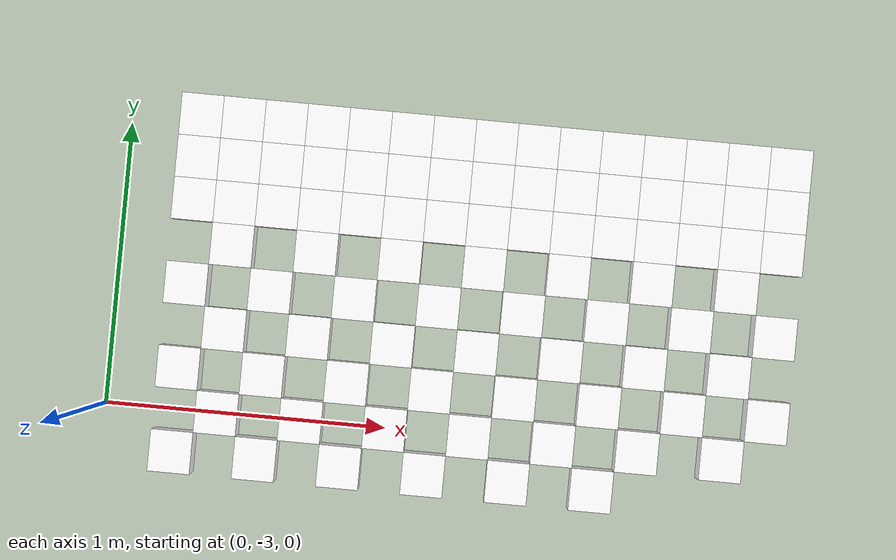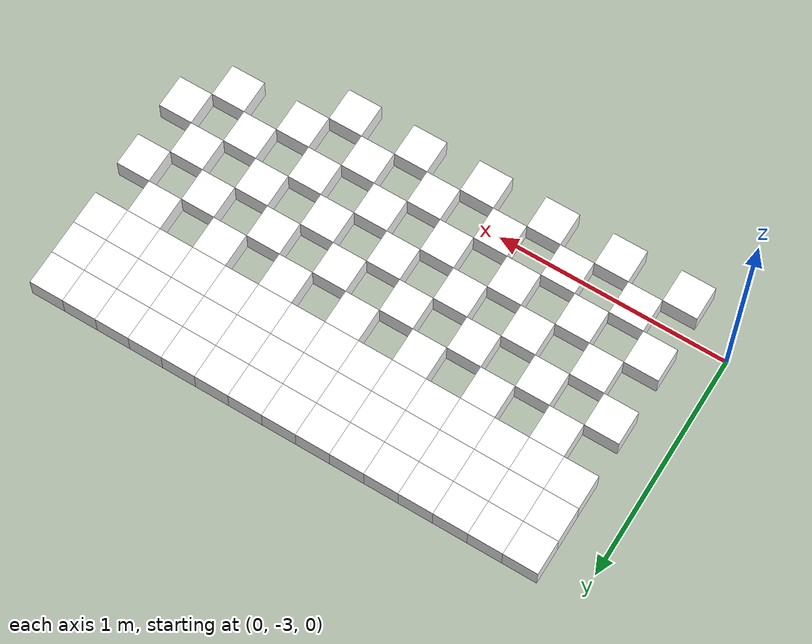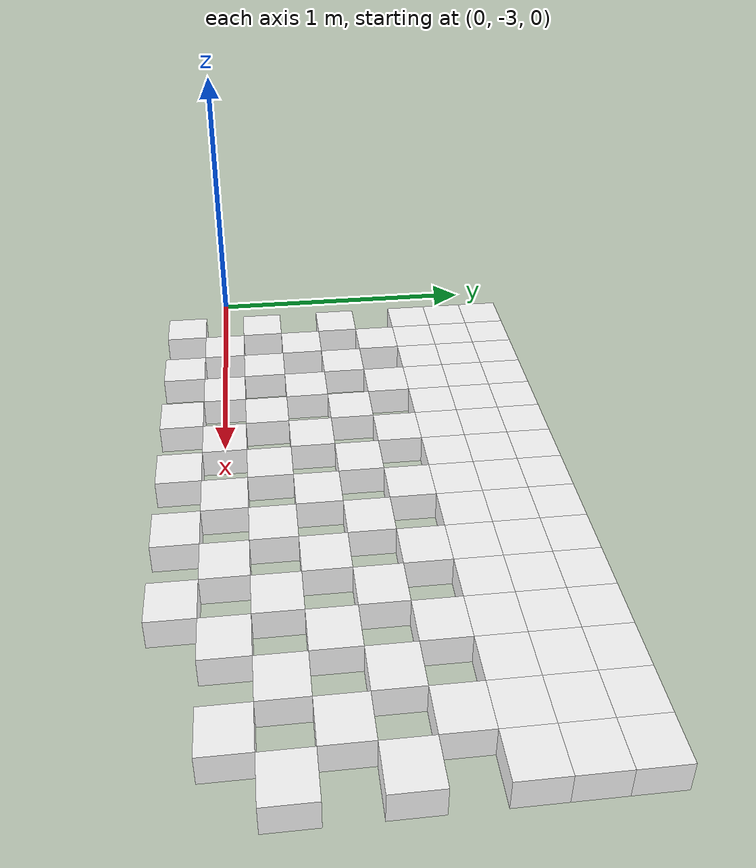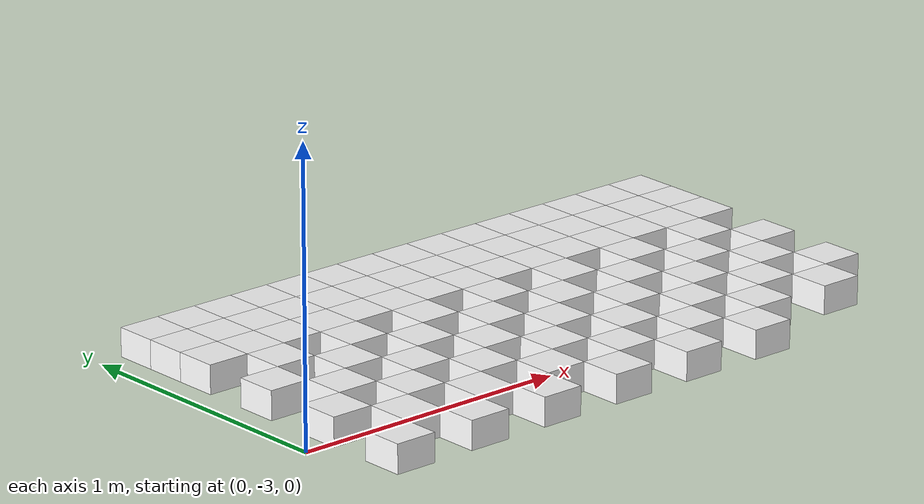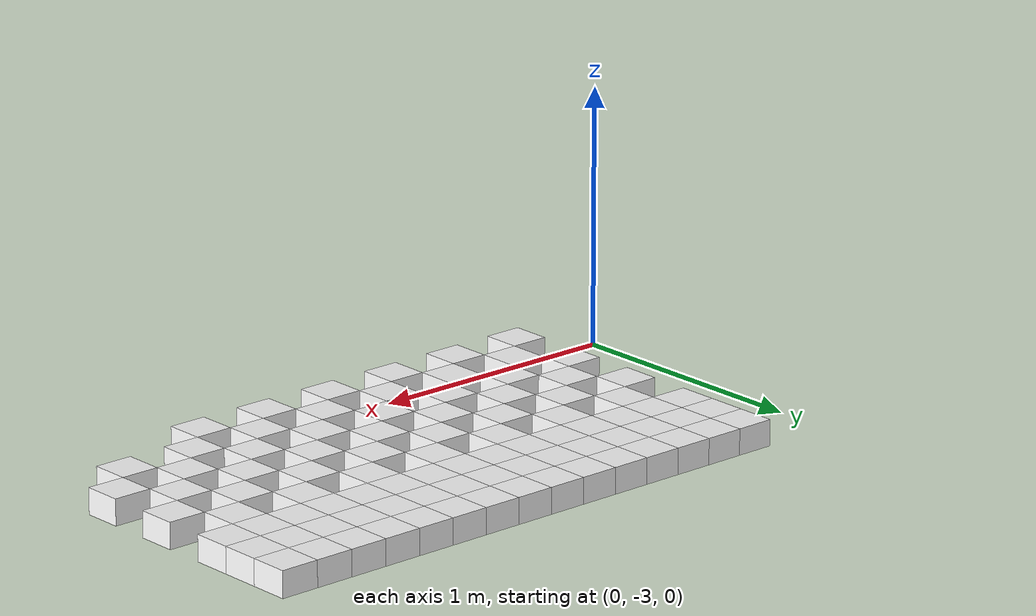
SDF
<sdf version="1.7">
 <world name="default">
  <include><uri>model://sun</uri></include>
  <model name="static_environment">
   <static>true</static>
   <link name="region_317">
    <pose>0.24977309111214208 -1.9502001957704636 0.0 0.0 0.0 4.7123</pose>
    <collision name="region_317_collision">
     <geometry><box><size>0.15 0.15 0.1</size></box></geometry>
     <surface><friction><ode><mu>1.0</mu><mu2>1.0</mu2></ode></friction></surface>
    </collision>
    <visual name="region_317_visual">
     <geometry><box><size>0.15 0.15 0.1</size></box></geometry>
     <material><ambient>1.0 1.0 1.0 1.0</ambient><diffuse>1.0 1.0 1.0 1.0</diffuse></material>
    </visual>
   </link>
   <link name="region_318">
    <pose>0.24975974405445633 -2.10020019517665 0.0 0.0 0.0 4.7123</pose>
    <collision name="region_318_collision">
     <geometry><box><size>0.15 0.15 0.1</size></box></geometry>
     <surface><friction><ode><mu>1.0</mu><mu2>1.0</mu2></ode></friction></surface>
    </collision>
    <visual name="region_318_visual">
     <geometry><box><size>0.15 0.15 0.1</size></box></geometry>
     <material><ambient>1.0 1.0 1.0 1.0</ambient><diffuse>1.0 1.0 1.0 1.0</diffuse></material>
    </visual>
   </link>
   <link name="region_319">
    <pose>0.24974639699677015 -2.250200194582837 0.0 0.0 0.0 4.7123</pose>
    <collision name="region_319_collision">
     <geometry><box><size>0.15 0.15 0.1</size></box></geometry>
     <surface><friction><ode><mu>1.0</mu><mu2>1.0</mu2></ode></friction></surface>
    </collision>
    <visual name="region_319_visual">
     <geometry><box><size>0.15 0.15 0.1</size></box></geometry>
     <material><ambient>1.0 1.0 1.0 1.0</ambient><diffuse>1.0 1.0 1.0 1.0</diffuse></material>
    </visual>
   </link>
   <link name="region_337">
    <pose>0.39977309051832854 -1.9502135428281493 0.0 0.0 0.0 4.7123</pose>
    <collision name="region_337_collision">
     <geometry><box><size>0.15 0.15 0.1</size></box></geometry>
     <surface><friction><ode><mu>1.0</mu><mu2>1.0</mu2></ode></friction></surface>
    </collision>
    <visual name="region_337_visual">
     <geometry><box><size>0.15 0.15 0.1</size></box></geometry>
     <material><ambient>1.0 1.0 1.0 1.0</ambient><diffuse>1.0 1.0 1.0 1.0</diffuse></material>
    </visual>
   </link>
   <link name="region_338">
    <pose>0.3997597434606428 -2.1002135422343358 0.0 0.0 0.0 4.7123</pose>
    <collision name="region_338_collision">
     <geometry><box><size>0.15 0.15 0.1</size></box></geometry>
     <surface><friction><ode><mu>1.0</mu><mu2>1.0</mu2></ode></friction></surface>
    </collision>
    <visual name="region_338_visual">
     <geometry><box><size>0.15 0.15 0.1</size></box></geometry>
     <material><ambient>1.0 1.0 1.0 1.0</ambient><diffuse>1.0 1.0 1.0 1.0</diffuse></material>
    </visual>
   </link>
   <link name="region_339">
    <pose>0.3997463964029566 -2.2502135416405227 0.0 0.0 0.0 4.7123</pose>
    <collision name="region_339_collision">
     <geometry><box><size>0.15 0.15 0.1</size></box></geometry>
     <surface><friction><ode><mu>1.0</mu><mu2>1.0</mu2></ode></friction></surface>
    </collision>
    <visual name="region_339_visual">
     <geometry><box><size>0.15 0.15 0.1</size></box></geometry>
     <material><ambient>1.0 1.0 1.0 1.0</ambient><diffuse>1.0 1.0 1.0 1.0</diffuse></material>
    </visual>
   </link>
   <link name="region_357">
    <pose>0.5497730899245155 -1.950226889885835 0.0 0.0 0.0 4.7123</pose>
    <collision name="region_357_collision">
     <geometry><box><size>0.15 0.15 0.1</size></box></geometry>
     <surface><friction><ode><mu>1.0</mu><mu2>1.0</mu2></ode></friction></surface>
    </collision>
    <visual name="region_357_visual">
     <geometry><box><size>0.15 0.15 0.1</size></box></geometry>
     <material><ambient>1.0 1.0 1.0 1.0</ambient><diffuse>1.0 1.0 1.0 1.0</diffuse></material>
    </visual>
   </link>
   <link name="region_358">
    <pose>0.5497597428668297 -2.100226889292022 0.0 0.0 0.0 4.7123</pose>
    <collision name="region_358_collision">
     <geometry><box><size>0.15 0.15 0.1</size></box></geometry>
     <surface><friction><ode><mu>1.0</mu><mu2>1.0</mu2></ode></friction></surface>
    </collision>
    <visual name="region_358_visual">
     <geometry><box><size>0.15 0.15 0.1</size></box></geometry>
     <material><ambient>1.0 1.0 1.0 1.0</ambient><diffuse>1.0 1.0 1.0 1.0</diffuse></material>
    </visual>
   </link>
   <link name="region_359">
    <pose>0.5497463958091435 -2.2502268886982084 0.0 0.0 0.0 4.7123</pose>
    <collision name="region_359_collision">
     <geometry><box><size>0.15 0.15 0.1</size></box></geometry>
     <surface><friction><ode><mu>1.0</mu><mu2>1.0</mu2></ode></friction></surface>
    </collision>
    <visual name="region_359_visual">
     <geometry><box><size>0.15 0.15 0.1</size></box></geometry>
     <material><ambient>1.0 1.0 1.0 1.0</ambient><diffuse>1.0 1.0 1.0 1.0</diffuse></material>
    </visual>
   </link>
   <link name="region_377">
    <pose>0.6997730893307024 -1.9502402369435208 0.0 0.0 0.0 4.7123</pose>
    <collision name="region_377_collision">
     <geometry><box><size>0.15 0.15 0.1</size></box></geometry>
     <surface><friction><ode><mu>1.0</mu><mu2>1.0</mu2></ode></friction></surface>
    </collision>
    <visual name="region_377_visual">
     <geometry><box><size>0.15 0.15 0.1</size></box></geometry>
     <material><ambient>1.0 1.0 1.0 1.0</ambient><diffuse>1.0 1.0 1.0 1.0</diffuse></material>
    </visual>
   </link>
   <link name="region_378">
    <pose>0.6997597422730166 -2.1002402363497077 0.0 0.0 0.0 4.7123</pose>
    <collision name="region_378_collision">
     <geometry><box><size>0.15 0.15 0.1</size></box></geometry>
     <surface><friction><ode><mu>1.0</mu><mu2>1.0</mu2></ode></friction></surface>
    </collision>
    <visual name="region_378_visual">
     <geometry><box><size>0.15 0.15 0.1</size></box></geometry>
     <material><ambient>1.0 1.0 1.0 1.0</ambient><diffuse>1.0 1.0 1.0 1.0</diffuse></material>
    </visual>
   </link>
   <link name="region_379">
    <pose>0.6997463952153304 -2.2502402357558946 0.0 0.0 0.0 4.7123</pose>
    <collision name="region_379_collision">
     <geometry><box><size>0.15 0.15 0.1</size></box></geometry>
     <surface><friction><ode><mu>1.0</mu><mu2>1.0</mu2></ode></friction></surface>
    </collision>
    <visual name="region_379_visual">
     <geometry><box><size>0.15 0.15 0.1</size></box></geometry>
     <material><ambient>1.0 1.0 1.0 1.0</ambient><diffuse>1.0 1.0 1.0 1.0</diffuse></material>
    </visual>
   </link>
   <link name="region_397">
    <pose>0.8497730887368888 -1.950253584001207 0.0 0.0 0.0 4.7123</pose>
    <collision name="region_397_collision">
     <geometry><box><size>0.15 0.15 0.1</size></box></geometry>
     <surface><friction><ode><mu>1.0</mu><mu2>1.0</mu2></ode></friction></surface>
    </collision>
    <visual name="region_397_visual">
     <geometry><box><size>0.15 0.15 0.1</size></box></geometry>
     <material><ambient>1.0 1.0 1.0 1.0</ambient><diffuse>1.0 1.0 1.0 1.0</diffuse></material>
    </visual>
   </link>
   <link name="region_398">
    <pose>0.8497597416792031 -2.1002535834073934 0.0 0.0 0.0 4.7123</pose>
    <collision name="region_398_collision">
     <geometry><box><size>0.15 0.15 0.1</size></box></geometry>
     <surface><friction><ode><mu>1.0</mu><mu2>1.0</mu2></ode></friction></surface>
    </collision>
    <visual name="region_398_visual">
     <geometry><box><size>0.15 0.15 0.1</size></box></geometry>
     <material><ambient>1.0 1.0 1.0 1.0</ambient><diffuse>1.0 1.0 1.0 1.0</diffuse></material>
    </visual>
   </link>
   <link name="region_399">
    <pose>0.8497463946215169 -2.2502535828135803 0.0 0.0 0.0 4.7123</pose>
    <collision name="region_399_collision">
     <geometry><box><size>0.15 0.15 0.1</size></box></geometry>
     <surface><friction><ode><mu>1.0</mu><mu2>1.0</mu2></ode></friction></surface>
    </collision>
    <visual name="region_399_visual">
     <geometry><box><size>0.15 0.15 0.1</size></box></geometry>
     <material><ambient>1.0 1.0 1.0 1.0</ambient><diffuse>1.0 1.0 1.0 1.0</diffuse></material>
    </visual>
   </link>
   <link name="region_417">
    <pose>0.9997730881430757 -1.9502669310588927 0.0 0.0 0.0 4.7123</pose>
    <collision name="region_417_collision">
     <geometry><box><size>0.15 0.15 0.1</size></box></geometry>
     <surface><friction><ode><mu>1.0</mu><mu2>1.0</mu2></ode></friction></surface>
    </collision>
    <visual name="region_417_visual">
     <geometry><box><size>0.15 0.15 0.1</size></box></geometry>
     <material><ambient>1.0 1.0 1.0 1.0</ambient><diffuse>1.0 1.0 1.0 1.0</diffuse></material>
    </visual>
   </link>
   <link name="region_418">
    <pose>0.99975974108539 -2.1002669304650796 0.0 0.0 0.0 4.7123</pose>
    <collision name="region_418_collision">
     <geometry><box><size>0.15 0.15 0.1</size></box></geometry>
     <surface><friction><ode><mu>1.0</mu><mu2>1.0</mu2></ode></friction></surface>
    </collision>
    <visual name="region_418_visual">
     <geometry><box><size>0.15 0.15 0.1</size></box></geometry>
     <material><ambient>1.0 1.0 1.0 1.0</ambient><diffuse>1.0 1.0 1.0 1.0</diffuse></material>
    </visual>
   </link>
   <link name="region_419">
    <pose>0.9997463940277038 -2.250266929871266 0.0 0.0 0.0 4.7123</pose>
    <collision name="region_419_collision">
     <geometry><box><size>0.15 0.15 0.1</size></box></geometry>
     <surface><friction><ode><mu>1.0</mu><mu2>1.0</mu2></ode></friction></surface>
    </collision>
    <visual name="region_419_visual">
     <geometry><box><size>0.15 0.15 0.1</size></box></geometry>
     <material><ambient>1.0 1.0 1.0 1.0</ambient><diffuse>1.0 1.0 1.0 1.0</diffuse></material>
    </visual>
   </link>
   <link name="region_437">
    <pose>1.1497730875492622 -1.9502802781165784 0.0 0.0 0.0 4.7123</pose>
    <collision name="region_437_collision">
     <geometry><box><size>0.15 0.15 0.1</size></box></geometry>
     <surface><friction><ode><mu>1.0</mu><mu2>1.0</mu2></ode></friction></surface>
    </collision>
    <visual name="region_437_visual">
     <geometry><box><size>0.15 0.15 0.1</size></box></geometry>
     <material><ambient>1.0 1.0 1.0 1.0</ambient><diffuse>1.0 1.0 1.0 1.0</diffuse></material>
    </visual>
   </link>
   <link name="region_438">
    <pose>1.1497597404915765 -2.1002802775227654 0.0 0.0 0.0 4.7123</pose>
    <collision name="region_438_collision">
     <geometry><box><size>0.15 0.15 0.1</size></box></geometry>
     <surface><friction><ode><mu>1.0</mu><mu2>1.0</mu2></ode></friction></surface>
    </collision>
    <visual name="region_438_visual">
     <geometry><box><size>0.15 0.15 0.1</size></box></geometry>
     <material><ambient>1.0 1.0 1.0 1.0</ambient><diffuse>1.0 1.0 1.0 1.0</diffuse></material>
    </visual>
   </link>
   <link name="region_439">
    <pose>1.1497463934338903 -2.2502802769289523 0.0 0.0 0.0 4.7123</pose>
    <collision name="region_439_collision">
     <geometry><box><size>0.15 0.15 0.1</size></box></geometry>
     <surface><friction><ode><mu>1.0</mu><mu2>1.0</mu2></ode></friction></surface>
    </collision>
    <visual name="region_439_visual">
     <geometry><box><size>0.15 0.15 0.1</size></box></geometry>
     <material><ambient>1.0 1.0 1.0 1.0</ambient><diffuse>1.0 1.0 1.0 1.0</diffuse></material>
    </visual>
   </link>
   <link name="region_457">
    <pose>1.2997730869554491 -1.9502936251742646 0.0 0.0 0.0 4.7123</pose>
    <collision name="region_457_collision">
     <geometry><box><size>0.15 0.15 0.1</size></box></geometry>
     <surface><friction><ode><mu>1.0</mu><mu2>1.0</mu2></ode></friction></surface>
    </collision>
    <visual name="region_457_visual">
     <geometry><box><size>0.15 0.15 0.1</size></box></geometry>
     <material><ambient>1.0 1.0 1.0 1.0</ambient><diffuse>1.0 1.0 1.0 1.0</diffuse></material>
    </visual>
   </link>
   <link name="region_458">
    <pose>1.2997597398977634 -2.100293624580451 0.0 0.0 0.0 4.7123</pose>
    <collision name="region_458_collision">
     <geometry><box><size>0.15 0.15 0.1</size></box></geometry>
     <surface><friction><ode><mu>1.0</mu><mu2>1.0</mu2></ode></friction></surface>
    </collision>
    <visual name="region_458_visual">
     <geometry><box><size>0.15 0.15 0.1</size></box></geometry>
     <material><ambient>1.0 1.0 1.0 1.0</ambient><diffuse>1.0 1.0 1.0 1.0</diffuse></material>
    </visual>
   </link>
   <link name="region_459">
    <pose>1.2997463928400772 -2.250293623986638 0.0 0.0 0.0 4.7123</pose>
    <collision name="region_459_collision">
     <geometry><box><size>0.15 0.15 0.1</size></box></geometry>
     <surface><friction><ode><mu>1.0</mu><mu2>1.0</mu2></ode></friction></surface>
    </collision>
    <visual name="region_459_visual">
     <geometry><box><size>0.15 0.15 0.1</size></box></geometry>
     <material><ambient>1.0 1.0 1.0 1.0</ambient><diffuse>1.0 1.0 1.0 1.0</diffuse></material>
    </visual>
   </link>
   <link name="region_477">
    <pose>1.449773086361636 -1.9503069722319504 0.0 0.0 0.0 4.7123</pose>
    <collision name="region_477_collision">
     <geometry><box><size>0.15 0.15 0.1</size></box></geometry>
     <surface><friction><ode><mu>1.0</mu><mu2>1.0</mu2></ode></friction></surface>
    </collision>
    <visual name="region_477_visual">
     <geometry><box><size>0.15 0.15 0.1</size></box></geometry>
     <material><ambient>1.0 1.0 1.0 1.0</ambient><diffuse>1.0 1.0 1.0 1.0</diffuse></material>
    </visual>
   </link>
   <link name="region_478">
    <pose>1.4497597393039503 -2.1003069716381373 0.0 0.0 0.0 4.7123</pose>
    <collision name="region_478_collision">
     <geometry><box><size>0.15 0.15 0.1</size></box></geometry>
     <surface><friction><ode><mu>1.0</mu><mu2>1.0</mu2></ode></friction></surface>
    </collision>
    <visual name="region_478_visual">
     <geometry><box><size>0.15 0.15 0.1</size></box></geometry>
     <material><ambient>1.0 1.0 1.0 1.0</ambient><diffuse>1.0 1.0 1.0 1.0</diffuse></material>
    </visual>
   </link>
   <link name="region_479">
    <pose>1.4497463922462641 -2.2503069710443238 0.0 0.0 0.0 4.7123</pose>
    <collision name="region_479_collision">
     <geometry><box><size>0.15 0.15 0.1</size></box></geometry>
     <surface><friction><ode><mu>1.0</mu><mu2>1.0</mu2></ode></friction></surface>
    </collision>
    <visual name="region_479_visual">
     <geometry><box><size>0.15 0.15 0.1</size></box></geometry>
     <material><ambient>1.0 1.0 1.0 1.0</ambient><diffuse>1.0 1.0 1.0 1.0</diffuse></material>
    </visual>
   </link>
   <link name="region_497">
    <pose>1.5997730857678225 -1.9503203192896361 0.0 0.0 0.0 4.7123</pose>
    <collision name="region_497_collision">
     <geometry><box><size>0.15 0.15 0.1</size></box></geometry>
     <surface><friction><ode><mu>1.0</mu><mu2>1.0</mu2></ode></friction></surface>
    </collision>
    <visual name="region_497_visual">
     <geometry><box><size>0.15 0.15 0.1</size></box></geometry>
     <material><ambient>1.0 1.0 1.0 1.0</ambient><diffuse>1.0 1.0 1.0 1.0</diffuse></material>
    </visual>
   </link>
   <link name="region_498">
    <pose>1.5997597387101368 -2.100320318695823 0.0 0.0 0.0 4.7123</pose>
    <collision name="region_498_collision">
     <geometry><box><size>0.15 0.15 0.1</size></box></geometry>
     <surface><friction><ode><mu>1.0</mu><mu2>1.0</mu2></ode></friction></surface>
    </collision>
    <visual name="region_498_visual">
     <geometry><box><size>0.15 0.15 0.1</size></box></geometry>
     <material><ambient>1.0 1.0 1.0 1.0</ambient><diffuse>1.0 1.0 1.0 1.0</diffuse></material>
    </visual>
   </link>
   <link name="region_499">
    <pose>1.5997463916524506 -2.2503203181020095 0.0 0.0 0.0 4.7123</pose>
    <collision name="region_499_collision">
     <geometry><box><size>0.15 0.15 0.1</size></box></geometry>
     <surface><friction><ode><mu>1.0</mu><mu2>1.0</mu2></ode></friction></surface>
    </collision>
    <visual name="region_499_visual">
     <geometry><box><size>0.15 0.15 0.1</size></box></geometry>
     <material><ambient>1.0 1.0 1.0 1.0</ambient><diffuse>1.0 1.0 1.0 1.0</diffuse></material>
    </visual>
   </link>
   <link name="region_517">
    <pose>1.7497730851740094 -1.9503336663473223 0.0 0.0 0.0 4.7123</pose>
    <collision name="region_517_collision">
     <geometry><box><size>0.15 0.15 0.1</size></box></geometry>
     <surface><friction><ode><mu>1.0</mu><mu2>1.0</mu2></ode></friction></surface>
    </collision>
    <visual name="region_517_visual">
     <geometry><box><size>0.15 0.15 0.1</size></box></geometry>
     <material><ambient>1.0 1.0 1.0 1.0</ambient><diffuse>1.0 1.0 1.0 1.0</diffuse></material>
    </visual>
   </link>
   <link name="region_518">
    <pose>1.7497597381163237 -2.1003336657535088 0.0 0.0 0.0 4.7123</pose>
    <collision name="region_518_collision">
     <geometry><box><size>0.15 0.15 0.1</size></box></geometry>
     <surface><friction><ode><mu>1.0</mu><mu2>1.0</mu2></ode></friction></surface>
    </collision>
    <visual name="region_518_visual">
     <geometry><box><size>0.15 0.15 0.1</size></box></geometry>
     <material><ambient>1.0 1.0 1.0 1.0</ambient><diffuse>1.0 1.0 1.0 1.0</diffuse></material>
    </visual>
   </link>
   <link name="region_519">
    <pose>1.7497463910586375 -2.2503336651596957 0.0 0.0 0.0 4.7123</pose>
    <collision name="region_519_collision">
     <geometry><box><size>0.15 0.15 0.1</size></box></geometry>
     <surface><friction><ode><mu>1.0</mu><mu2>1.0</mu2></ode></friction></surface>
    </collision>
    <visual name="region_519_visual">
     <geometry><box><size>0.15 0.15 0.1</size></box></geometry>
     <material><ambient>1.0 1.0 1.0 1.0</ambient><diffuse>1.0 1.0 1.0 1.0</diffuse></material>
    </visual>
   </link>
   <link name="region_537">
    <pose>1.899773084580196 -1.950347013405008 0.0 0.0 0.0 4.7123</pose>
    <collision name="region_537_collision">
     <geometry><box><size>0.15 0.15 0.1</size></box></geometry>
     <surface><friction><ode><mu>1.0</mu><mu2>1.0</mu2></ode></friction></surface>
    </collision>
    <visual name="region_537_visual">
     <geometry><box><size>0.15 0.15 0.1</size></box></geometry>
     <material><ambient>1.0 1.0 1.0 1.0</ambient><diffuse>1.0 1.0 1.0 1.0</diffuse></material>
    </visual>
   </link>
   <link name="region_538">
    <pose>1.8997597375225102 -2.1003470128111945 0.0 0.0 0.0 4.7123</pose>
    <collision name="region_538_collision">
     <geometry><box><size>0.15 0.15 0.1</size></box></geometry>
     <surface><friction><ode><mu>1.0</mu><mu2>1.0</mu2></ode></friction></surface>
    </collision>
    <visual name="region_538_visual">
     <geometry><box><size>0.15 0.15 0.1</size></box></geometry>
     <material><ambient>1.0 1.0 1.0 1.0</ambient><diffuse>1.0 1.0 1.0 1.0</diffuse></material>
    </visual>
   </link>
   <link name="region_539">
    <pose>1.899746390464824 -2.2503470122173814 0.0 0.0 0.0 4.7123</pose>
    <collision name="region_539_collision">
     <geometry><box><size>0.15 0.15 0.1</size></box></geometry>
     <surface><friction><ode><mu>1.0</mu><mu2>1.0</mu2></ode></friction></surface>
    </collision>
    <visual name="region_539_visual">
     <geometry><box><size>0.15 0.15 0.1</size></box></geometry>
     <material><ambient>1.0 1.0 1.0 1.0</ambient><diffuse>1.0 1.0 1.0 1.0</diffuse></material>
    </visual>
   </link>
   <link name="region_557">
    <pose>2.0497730839863824 -1.9503603604626938 0.0 0.0 0.0 4.7123</pose>
    <collision name="region_557_collision">
     <geometry><box><size>0.15 0.15 0.1</size></box></geometry>
     <surface><friction><ode><mu>1.0</mu><mu2>1.0</mu2></ode></friction></surface>
    </collision>
    <visual name="region_557_visual">
     <geometry><box><size>0.15 0.15 0.1</size></box></geometry>
     <material><ambient>1.0 1.0 1.0 1.0</ambient><diffuse>1.0 1.0 1.0 1.0</diffuse></material>
    </visual>
   </link>
   <link name="region_558">
    <pose>2.0497597369286966 -2.1003603598688807 0.0 0.0 0.0 4.7123</pose>
    <collision name="region_558_collision">
     <geometry><box><size>0.15 0.15 0.1</size></box></geometry>
     <surface><friction><ode><mu>1.0</mu><mu2>1.0</mu2></ode></friction></surface>
    </collision>
    <visual name="region_558_visual">
     <geometry><box><size>0.15 0.15 0.1</size></box></geometry>
     <material><ambient>1.0 1.0 1.0 1.0</ambient><diffuse>1.0 1.0 1.0 1.0</diffuse></material>
    </visual>
   </link>
   <link name="region_559">
    <pose>2.049746389871011 -2.250360359275067 0.0 0.0 0.0 4.7123</pose>
    <collision name="region_559_collision">
     <geometry><box><size>0.15 0.15 0.1</size></box></geometry>
     <surface><friction><ode><mu>1.0</mu><mu2>1.0</mu2></ode></friction></surface>
    </collision>
    <visual name="region_559_visual">
     <geometry><box><size>0.15 0.15 0.1</size></box></geometry>
     <material><ambient>1.0 1.0 1.0 1.0</ambient><diffuse>1.0 1.0 1.0 1.0</diffuse></material>
    </visual>
   </link>
   <link name="region_577">
    <pose>2.1997730833925697 -1.9503737075203795 0.0 0.0 0.0 4.7123</pose>
    <collision name="region_577_collision">
     <geometry><box><size>0.15 0.15 0.1</size></box></geometry>
     <surface><friction><ode><mu>1.0</mu><mu2>1.0</mu2></ode></friction></surface>
    </collision>
    <visual name="region_577_visual">
     <geometry><box><size>0.15 0.15 0.1</size></box></geometry>
     <material><ambient>1.0 1.0 1.0 1.0</ambient><diffuse>1.0 1.0 1.0 1.0</diffuse></material>
    </visual>
   </link>
   <link name="region_578">
    <pose>2.199759736334884 -2.1003737069265664 0.0 0.0 0.0 4.7123</pose>
    <collision name="region_578_collision">
     <geometry><box><size>0.15 0.15 0.1</size></box></geometry>
     <surface><friction><ode><mu>1.0</mu><mu2>1.0</mu2></ode></friction></surface>
    </collision>
    <visual name="region_578_visual">
     <geometry><box><size>0.15 0.15 0.1</size></box></geometry>
     <material><ambient>1.0 1.0 1.0 1.0</ambient><diffuse>1.0 1.0 1.0 1.0</diffuse></material>
    </visual>
   </link>
   <link name="region_579">
    <pose>2.1997463892771982 -2.2503737063327534 0.0 0.0 0.0 4.7123</pose>
    <collision name="region_579_collision">
     <geometry><box><size>0.15 0.15 0.1</size></box></geometry>
     <surface><friction><ode><mu>1.0</mu><mu2>1.0</mu2></ode></friction></surface>
    </collision>
    <visual name="region_579_visual">
     <geometry><box><size>0.15 0.15 0.1</size></box></geometry>
     <material><ambient>1.0 1.0 1.0 1.0</ambient><diffuse>1.0 1.0 1.0 1.0</diffuse></material>
    </visual>
   </link>
   <link name="region_597">
    <pose>2.349773082798757 -1.9503870545780657 0.0 0.0 0.0 4.7123</pose>
    <collision name="region_597_collision">
     <geometry><box><size>0.15 0.15 0.1</size></box></geometry>
     <surface><friction><ode><mu>1.0</mu><mu2>1.0</mu2></ode></friction></surface>
    </collision>
    <visual name="region_597_visual">
     <geometry><box><size>0.15 0.15 0.1</size></box></geometry>
     <material><ambient>1.0 1.0 1.0 1.0</ambient><diffuse>1.0 1.0 1.0 1.0</diffuse></material>
    </visual>
   </link>
   <link name="region_598">
    <pose>2.3497597357410713 -2.100387053984252 0.0 0.0 0.0 4.7123</pose>
    <collision name="region_598_collision">
     <geometry><box><size>0.15 0.15 0.1</size></box></geometry>
     <surface><friction><ode><mu>1.0</mu><mu2>1.0</mu2></ode></friction></surface>
    </collision>
    <visual name="region_598_visual">
     <geometry><box><size>0.15 0.15 0.1</size></box></geometry>
     <material><ambient>1.0 1.0 1.0 1.0</ambient><diffuse>1.0 1.0 1.0 1.0</diffuse></material>
    </visual>
   </link>
   <link name="region_599">
    <pose>2.3497463886833856 -2.250387053390439 0.0 0.0 0.0 4.7123</pose>
    <collision name="region_599_collision">
     <geometry><box><size>0.15 0.15 0.1</size></box></geometry>
     <surface><friction><ode><mu>1.0</mu><mu2>1.0</mu2></ode></friction></surface>
    </collision>
    <visual name="region_599_visual">
     <geometry><box><size>0.15 0.15 0.1</size></box></geometry>
     <material><ambient>1.0 1.0 1.0 1.0</ambient><diffuse>1.0 1.0 1.0 1.0</diffuse></material>
    </visual>
   </link>
   <link name="region_675">
    <pose>0.24971970288139866 -2.550200193395211 0.0 0.0 0.0 4.7123</pose>
    <collision name="region_675_collision">
     <geometry><box><size>0.15 0.15 0.1</size></box></geometry>
     <surface><friction><ode><mu>1.0</mu><mu2>1.0</mu2></ode></friction></surface>
    </collision>
    <visual name="region_675_visual">
     <geometry><box><size>0.15 0.15 0.1</size></box></geometry>
     <material><ambient>1.0 1.0 1.0 1.0</ambient><diffuse>1.0 1.0 1.0 1.0</diffuse></material>
    </visual>
   </link>
   <link name="region_676">
    <pose>0.24969300876602674 -2.8502001922075846 0.0 0.0 0.0 4.7123</pose>
    <collision name="region_676_collision">
     <geometry><box><size>0.15 0.15 0.1</size></box></geometry>
     <surface><friction><ode><mu>1.0</mu><mu2>1.0</mu2></ode></friction></surface>
    </collision>
    <visual name="region_676_visual">
     <geometry><box><size>0.15 0.15 0.1</size></box></geometry>
     <material><ambient>1.0 1.0 1.0 1.0</ambient><diffuse>1.0 1.0 1.0 1.0</diffuse></material>
    </visual>
   </link>
   <link name="region_677">
    <pose>0.2496663146506548 -3.150200191019958 0.0 0.0 0.0 4.7123</pose>
    <collision name="region_677_collision">
     <geometry><box><size>0.15 0.15 0.1</size></box></geometry>
     <surface><friction><ode><mu>1.0</mu><mu2>1.0</mu2></ode></friction></surface>
    </collision>
    <visual name="region_677_visual">
     <geometry><box><size>0.15 0.15 0.1</size></box></geometry>
     <material><ambient>1.0 1.0 1.0 1.0</ambient><diffuse>1.0 1.0 1.0 1.0</diffuse></material>
    </visual>
   </link>
   <link name="region_680">
    <pose>0.3997330493452709 -2.4002135410467105 0.0 0.0 0.0 4.7123</pose>
    <collision name="region_680_collision">
     <geometry><box><size>0.15 0.15 0.1</size></box></geometry>
     <surface><friction><ode><mu>1.0</mu><mu2>1.0</mu2></ode></friction></surface>
    </collision>
    <visual name="region_680_visual">
     <geometry><box><size>0.15 0.15 0.1</size></box></geometry>
     <material><ambient>1.0 1.0 1.0 1.0</ambient><diffuse>1.0 1.0 1.0 1.0</diffuse></material>
    </visual>
   </link>
   <link name="region_681">
    <pose>0.39970635522989895 -2.700213539859084 0.0 0.0 0.0 4.7123</pose>
    <collision name="region_681_collision">
     <geometry><box><size>0.15 0.15 0.1</size></box></geometry>
     <surface><friction><ode><mu>1.0</mu><mu2>1.0</mu2></ode></friction></surface>
    </collision>
    <visual name="region_681_visual">
     <geometry><box><size>0.15 0.15 0.1</size></box></geometry>
     <material><ambient>1.0 1.0 1.0 1.0</ambient><diffuse>1.0 1.0 1.0 1.0</diffuse></material>
    </visual>
   </link>
   <link name="region_682">
    <pose>0.39967966111452746 -3.0002135386714572 0.0 0.0 0.0 4.7123</pose>
    <collision name="region_682_collision">
     <geometry><box><size>0.15 0.15 0.1</size></box></geometry>
     <surface><friction><ode><mu>1.0</mu><mu2>1.0</mu2></ode></friction></surface>
    </collision>
    <visual name="region_682_visual">
     <geometry><box><size>0.15 0.15 0.1</size></box></geometry>
     <material><ambient>1.0 1.0 1.0 1.0</ambient><diffuse>1.0 1.0 1.0 1.0</diffuse></material>
    </visual>
   </link>
   <link name="region_685">
    <pose>0.549719701693772 -2.5502268875105827 0.0 0.0 0.0 4.7123</pose>
    <collision name="region_685_collision">
     <geometry><box><size>0.15 0.15 0.1</size></box></geometry>
     <surface><friction><ode><mu>1.0</mu><mu2>1.0</mu2></ode></friction></surface>
    </collision>
    <visual name="region_685_visual">
     <geometry><box><size>0.15 0.15 0.1</size></box></geometry>
     <material><ambient>1.0 1.0 1.0 1.0</ambient><diffuse>1.0 1.0 1.0 1.0</diffuse></material>
    </visual>
   </link>
   <link name="region_686">
    <pose>0.5496930075784001 -2.8502268863229565 0.0 0.0 0.0 4.7123</pose>
    <collision name="region_686_collision">
     <geometry><box><size>0.15 0.15 0.1</size></box></geometry>
     <surface><friction><ode><mu>1.0</mu><mu2>1.0</mu2></ode></friction></surface>
    </collision>
    <visual name="region_686_visual">
     <geometry><box><size>0.15 0.15 0.1</size></box></geometry>
     <material><ambient>1.0 1.0 1.0 1.0</ambient><diffuse>1.0 1.0 1.0 1.0</diffuse></material>
    </visual>
   </link>
   <link name="region_687">
    <pose>0.5496663134630282 -3.15022688513533 0.0 0.0 0.0 4.7123</pose>
    <collision name="region_687_collision">
     <geometry><box><size>0.15 0.15 0.1</size></box></geometry>
     <surface><friction><ode><mu>1.0</mu><mu2>1.0</mu2></ode></friction></surface>
    </collision>
    <visual name="region_687_visual">
     <geometry><box><size>0.15 0.15 0.1</size></box></geometry>
     <material><ambient>1.0 1.0 1.0 1.0</ambient><diffuse>1.0 1.0 1.0 1.0</diffuse></material>
    </visual>
   </link>
   <link name="region_690">
    <pose>0.6997330481576447 -2.400240235162082 0.0 0.0 0.0 4.7123</pose>
    <collision name="region_690_collision">
     <geometry><box><size>0.15 0.15 0.1</size></box></geometry>
     <surface><friction><ode><mu>1.0</mu><mu2>1.0</mu2></ode></friction></surface>
    </collision>
    <visual name="region_690_visual">
     <geometry><box><size>0.15 0.15 0.1</size></box></geometry>
     <material><ambient>1.0 1.0 1.0 1.0</ambient><diffuse>1.0 1.0 1.0 1.0</diffuse></material>
    </visual>
   </link>
   <link name="region_691">
    <pose>0.6997063540422728 -2.7002402339744553 0.0 0.0 0.0 4.7123</pose>
    <collision name="region_691_collision">
     <geometry><box><size>0.15 0.15 0.1</size></box></geometry>
     <surface><friction><ode><mu>1.0</mu><mu2>1.0</mu2></ode></friction></surface>
    </collision>
    <visual name="region_691_visual">
     <geometry><box><size>0.15 0.15 0.1</size></box></geometry>
     <material><ambient>1.0 1.0 1.0 1.0</ambient><diffuse>1.0 1.0 1.0 1.0</diffuse></material>
    </visual>
   </link>
   <link name="region_692">
    <pose>0.6996796599269013 -3.000240232786829 0.0 0.0 0.0 4.7123</pose>
    <collision name="region_692_collision">
     <geometry><box><size>0.15 0.15 0.1</size></box></geometry>
     <surface><friction><ode><mu>1.0</mu><mu2>1.0</mu2></ode></friction></surface>
    </collision>
    <visual name="region_692_visual">
     <geometry><box><size>0.15 0.15 0.1</size></box></geometry>
     <material><ambient>1.0 1.0 1.0 1.0</ambient><diffuse>1.0 1.0 1.0 1.0</diffuse></material>
    </visual>
   </link>
   <link name="region_695">
    <pose>0.8497197005061454 -2.5502535816259546 0.0 0.0 0.0 4.7123</pose>
    <collision name="region_695_collision">
     <geometry><box><size>0.15 0.15 0.1</size></box></geometry>
     <surface><friction><ode><mu>1.0</mu><mu2>1.0</mu2></ode></friction></surface>
    </collision>
    <visual name="region_695_visual">
     <geometry><box><size>0.15 0.15 0.1</size></box></geometry>
     <material><ambient>1.0 1.0 1.0 1.0</ambient><diffuse>1.0 1.0 1.0 1.0</diffuse></material>
    </visual>
   </link>
   <link name="region_696">
    <pose>0.8496930063907735 -2.850253580438328 0.0 0.0 0.0 4.7123</pose>
    <collision name="region_696_collision">
     <geometry><box><size>0.15 0.15 0.1</size></box></geometry>
     <surface><friction><ode><mu>1.0</mu><mu2>1.0</mu2></ode></friction></surface>
    </collision>
    <visual name="region_696_visual">
     <geometry><box><size>0.15 0.15 0.1</size></box></geometry>
     <material><ambient>1.0 1.0 1.0 1.0</ambient><diffuse>1.0 1.0 1.0 1.0</diffuse></material>
    </visual>
   </link>
   <link name="region_697">
    <pose>0.8496663122754016 -3.1502535792507014 0.0 0.0 0.0 4.7123</pose>
    <collision name="region_697_collision">
     <geometry><box><size>0.15 0.15 0.1</size></box></geometry>
     <surface><friction><ode><mu>1.0</mu><mu2>1.0</mu2></ode></friction></surface>
    </collision>
    <visual name="region_697_visual">
     <geometry><box><size>0.15 0.15 0.1</size></box></geometry>
     <material><ambient>1.0 1.0 1.0 1.0</ambient><diffuse>1.0 1.0 1.0 1.0</diffuse></material>
    </visual>
   </link>
   <link name="region_700">
    <pose>0.9997330469700181 -2.400266929277454 0.0 0.0 0.0 4.7123</pose>
    <collision name="region_700_collision">
     <geometry><box><size>0.15 0.15 0.1</size></box></geometry>
     <surface><friction><ode><mu>1.0</mu><mu2>1.0</mu2></ode></friction></surface>
    </collision>
    <visual name="region_700_visual">
     <geometry><box><size>0.15 0.15 0.1</size></box></geometry>
     <material><ambient>1.0 1.0 1.0 1.0</ambient><diffuse>1.0 1.0 1.0 1.0</diffuse></material>
    </visual>
   </link>
   <link name="region_701">
    <pose>0.9997063528546462 -2.7002669280898273 0.0 0.0 0.0 4.7123</pose>
    <collision name="region_701_collision">
     <geometry><box><size>0.15 0.15 0.1</size></box></geometry>
     <surface><friction><ode><mu>1.0</mu><mu2>1.0</mu2></ode></friction></surface>
    </collision>
    <visual name="region_701_visual">
     <geometry><box><size>0.15 0.15 0.1</size></box></geometry>
     <material><ambient>1.0 1.0 1.0 1.0</ambient><diffuse>1.0 1.0 1.0 1.0</diffuse></material>
    </visual>
   </link>
   <link name="region_702">
    <pose>0.9996796587392747 -3.0002669269022006 0.0 0.0 0.0 4.7123</pose>
    <collision name="region_702_collision">
     <geometry><box><size>0.15 0.15 0.1</size></box></geometry>
     <surface><friction><ode><mu>1.0</mu><mu2>1.0</mu2></ode></friction></surface>
    </collision>
    <visual name="region_702_visual">
     <geometry><box><size>0.15 0.15 0.1</size></box></geometry>
     <material><ambient>1.0 1.0 1.0 1.0</ambient><diffuse>1.0 1.0 1.0 1.0</diffuse></material>
    </visual>
   </link>
   <link name="region_705">
    <pose>1.1497196993185188 -2.5502802757413265 0.0 0.0 0.0 4.7123</pose>
    <collision name="region_705_collision">
     <geometry><box><size>0.15 0.15 0.1</size></box></geometry>
     <surface><friction><ode><mu>1.0</mu><mu2>1.0</mu2></ode></friction></surface>
    </collision>
    <visual name="region_705_visual">
     <geometry><box><size>0.15 0.15 0.1</size></box></geometry>
     <material><ambient>1.0 1.0 1.0 1.0</ambient><diffuse>1.0 1.0 1.0 1.0</diffuse></material>
    </visual>
   </link>
   <link name="region_706">
    <pose>1.1496930052031469 -2.8502802745537 0.0 0.0 0.0 4.7123</pose>
    <collision name="region_706_collision">
     <geometry><box><size>0.15 0.15 0.1</size></box></geometry>
     <surface><friction><ode><mu>1.0</mu><mu2>1.0</mu2></ode></friction></surface>
    </collision>
    <visual name="region_706_visual">
     <geometry><box><size>0.15 0.15 0.1</size></box></geometry>
     <material><ambient>1.0 1.0 1.0 1.0</ambient><diffuse>1.0 1.0 1.0 1.0</diffuse></material>
    </visual>
   </link>
   <link name="region_707">
    <pose>1.149666311087775 -3.1502802733660733 0.0 0.0 0.0 4.7123</pose>
    <collision name="region_707_collision">
     <geometry><box><size>0.15 0.15 0.1</size></box></geometry>
     <surface><friction><ode><mu>1.0</mu><mu2>1.0</mu2></ode></friction></surface>
    </collision>
    <visual name="region_707_visual">
     <geometry><box><size>0.15 0.15 0.1</size></box></geometry>
     <material><ambient>1.0 1.0 1.0 1.0</ambient><diffuse>1.0 1.0 1.0 1.0</diffuse></material>
    </visual>
   </link>
   <link name="region_710">
    <pose>1.2997330457823915 -2.4002936233928254 0.0 0.0 0.0 4.7123</pose>
    <collision name="region_710_collision">
     <geometry><box><size>0.15 0.15 0.1</size></box></geometry>
     <surface><friction><ode><mu>1.0</mu><mu2>1.0</mu2></ode></friction></surface>
    </collision>
    <visual name="region_710_visual">
     <geometry><box><size>0.15 0.15 0.1</size></box></geometry>
     <material><ambient>1.0 1.0 1.0 1.0</ambient><diffuse>1.0 1.0 1.0 1.0</diffuse></material>
    </visual>
   </link>
   <link name="region_711">
    <pose>1.2997063516670195 -2.700293622205199 0.0 0.0 0.0 4.7123</pose>
    <collision name="region_711_collision">
     <geometry><box><size>0.15 0.15 0.1</size></box></geometry>
     <surface><friction><ode><mu>1.0</mu><mu2>1.0</mu2></ode></friction></surface>
    </collision>
    <visual name="region_711_visual">
     <geometry><box><size>0.15 0.15 0.1</size></box></geometry>
     <material><ambient>1.0 1.0 1.0 1.0</ambient><diffuse>1.0 1.0 1.0 1.0</diffuse></material>
    </visual>
   </link>
   <link name="region_712">
    <pose>1.299679657551648 -3.0002936210175726 0.0 0.0 0.0 4.7123</pose>
    <collision name="region_712_collision">
     <geometry><box><size>0.15 0.15 0.1</size></box></geometry>
     <surface><friction><ode><mu>1.0</mu><mu2>1.0</mu2></ode></friction></surface>
    </collision>
    <visual name="region_712_visual">
     <geometry><box><size>0.15 0.15 0.1</size></box></geometry>
     <material><ambient>1.0 1.0 1.0 1.0</ambient><diffuse>1.0 1.0 1.0 1.0</diffuse></material>
    </visual>
   </link>
   <link name="region_715">
    <pose>1.4497196981308926 -2.550306969856698 0.0 0.0 0.0 4.7123</pose>
    <collision name="region_715_collision">
     <geometry><box><size>0.15 0.15 0.1</size></box></geometry>
     <surface><friction><ode><mu>1.0</mu><mu2>1.0</mu2></ode></friction></surface>
    </collision>
    <visual name="region_715_visual">
     <geometry><box><size>0.15 0.15 0.1</size></box></geometry>
     <material><ambient>1.0 1.0 1.0 1.0</ambient><diffuse>1.0 1.0 1.0 1.0</diffuse></material>
    </visual>
   </link>
   <link name="region_716">
    <pose>1.4496930040155207 -2.8503069686690714 0.0 0.0 0.0 4.7123</pose>
    <collision name="region_716_collision">
     <geometry><box><size>0.15 0.15 0.1</size></box></geometry>
     <surface><friction><ode><mu>1.0</mu><mu2>1.0</mu2></ode></friction></surface>
    </collision>
    <visual name="region_716_visual">
     <geometry><box><size>0.15 0.15 0.1</size></box></geometry>
     <material><ambient>1.0 1.0 1.0 1.0</ambient><diffuse>1.0 1.0 1.0 1.0</diffuse></material>
    </visual>
   </link>
   <link name="region_717">
    <pose>1.4496663099001488 -3.1503069674814452 0.0 0.0 0.0 4.7123</pose>
    <collision name="region_717_collision">
     <geometry><box><size>0.15 0.15 0.1</size></box></geometry>
     <surface><friction><ode><mu>1.0</mu><mu2>1.0</mu2></ode></friction></surface>
    </collision>
    <visual name="region_717_visual">
     <geometry><box><size>0.15 0.15 0.1</size></box></geometry>
     <material><ambient>1.0 1.0 1.0 1.0</ambient><diffuse>1.0 1.0 1.0 1.0</diffuse></material>
    </visual>
   </link>
   <link name="region_720">
    <pose>1.5997330445947648 -2.4003203175081973 0.0 0.0 0.0 4.7123</pose>
    <collision name="region_720_collision">
     <geometry><box><size>0.15 0.15 0.1</size></box></geometry>
     <surface><friction><ode><mu>1.0</mu><mu2>1.0</mu2></ode></friction></surface>
    </collision>
    <visual name="region_720_visual">
     <geometry><box><size>0.15 0.15 0.1</size></box></geometry>
     <material><ambient>1.0 1.0 1.0 1.0</ambient><diffuse>1.0 1.0 1.0 1.0</diffuse></material>
    </visual>
   </link>
   <link name="region_721">
    <pose>1.599706350479393 -2.7003203163205707 0.0 0.0 0.0 4.7123</pose>
    <collision name="region_721_collision">
     <geometry><box><size>0.15 0.15 0.1</size></box></geometry>
     <surface><friction><ode><mu>1.0</mu><mu2>1.0</mu2></ode></friction></surface>
    </collision>
    <visual name="region_721_visual">
     <geometry><box><size>0.15 0.15 0.1</size></box></geometry>
     <material><ambient>1.0 1.0 1.0 1.0</ambient><diffuse>1.0 1.0 1.0 1.0</diffuse></material>
    </visual>
   </link>
   <link name="region_722">
    <pose>1.5996796563640214 -3.000320315132944 0.0 0.0 0.0 4.7123</pose>
    <collision name="region_722_collision">
     <geometry><box><size>0.15 0.15 0.1</size></box></geometry>
     <surface><friction><ode><mu>1.0</mu><mu2>1.0</mu2></ode></friction></surface>
    </collision>
    <visual name="region_722_visual">
     <geometry><box><size>0.15 0.15 0.1</size></box></geometry>
     <material><ambient>1.0 1.0 1.0 1.0</ambient><diffuse>1.0 1.0 1.0 1.0</diffuse></material>
    </visual>
   </link>
   <link name="region_725">
    <pose>1.749719696943266 -2.55033366397207 0.0 0.0 0.0 4.7123</pose>
    <collision name="region_725_collision">
     <geometry><box><size>0.15 0.15 0.1</size></box></geometry>
     <surface><friction><ode><mu>1.0</mu><mu2>1.0</mu2></ode></friction></surface>
    </collision>
    <visual name="region_725_visual">
     <geometry><box><size>0.15 0.15 0.1</size></box></geometry>
     <material><ambient>1.0 1.0 1.0 1.0</ambient><diffuse>1.0 1.0 1.0 1.0</diffuse></material>
    </visual>
   </link>
   <link name="region_726">
    <pose>1.749693002827894 -2.8503336627844433 0.0 0.0 0.0 4.7123</pose>
    <collision name="region_726_collision">
     <geometry><box><size>0.15 0.15 0.1</size></box></geometry>
     <surface><friction><ode><mu>1.0</mu><mu2>1.0</mu2></ode></friction></surface>
    </collision>
    <visual name="region_726_visual">
     <geometry><box><size>0.15 0.15 0.1</size></box></geometry>
     <material><ambient>1.0 1.0 1.0 1.0</ambient><diffuse>1.0 1.0 1.0 1.0</diffuse></material>
    </visual>
   </link>
   <link name="region_727">
    <pose>1.7496663087125222 -3.1503336615968167 0.0 0.0 0.0 4.7123</pose>
    <collision name="region_727_collision">
     <geometry><box><size>0.15 0.15 0.1</size></box></geometry>
     <surface><friction><ode><mu>1.0</mu><mu2>1.0</mu2></ode></friction></surface>
    </collision>
    <visual name="region_727_visual">
     <geometry><box><size>0.15 0.15 0.1</size></box></geometry>
     <material><ambient>1.0 1.0 1.0 1.0</ambient><diffuse>1.0 1.0 1.0 1.0</diffuse></material>
    </visual>
   </link>
   <link name="region_730">
    <pose>1.8997330434071382 -2.4003470116235692 0.0 0.0 0.0 4.7123</pose>
    <collision name="region_730_collision">
     <geometry><box><size>0.15 0.15 0.1</size></box></geometry>
     <surface><friction><ode><mu>1.0</mu><mu2>1.0</mu2></ode></friction></surface>
    </collision>
    <visual name="region_730_visual">
     <geometry><box><size>0.15 0.15 0.1</size></box></geometry>
     <material><ambient>1.0 1.0 1.0 1.0</ambient><diffuse>1.0 1.0 1.0 1.0</diffuse></material>
    </visual>
   </link>
   <link name="region_731">
    <pose>1.8997063492917663 -2.7003470104359426 0.0 0.0 0.0 4.7123</pose>
    <collision name="region_731_collision">
     <geometry><box><size>0.15 0.15 0.1</size></box></geometry>
     <surface><friction><ode><mu>1.0</mu><mu2>1.0</mu2></ode></friction></surface>
    </collision>
    <visual name="region_731_visual">
     <geometry><box><size>0.15 0.15 0.1</size></box></geometry>
     <material><ambient>1.0 1.0 1.0 1.0</ambient><diffuse>1.0 1.0 1.0 1.0</diffuse></material>
    </visual>
   </link>
   <link name="region_732">
    <pose>1.8996796551763948 -3.000347009248316 0.0 0.0 0.0 4.7123</pose>
    <collision name="region_732_collision">
     <geometry><box><size>0.15 0.15 0.1</size></box></geometry>
     <surface><friction><ode><mu>1.0</mu><mu2>1.0</mu2></ode></friction></surface>
    </collision>
    <visual name="region_732_visual">
     <geometry><box><size>0.15 0.15 0.1</size></box></geometry>
     <material><ambient>1.0 1.0 1.0 1.0</ambient><diffuse>1.0 1.0 1.0 1.0</diffuse></material>
    </visual>
   </link>
   <link name="region_735">
    <pose>2.0497196957556394 -2.5503603580874414 0.0 0.0 0.0 4.7123</pose>
    <collision name="region_735_collision">
     <geometry><box><size>0.15 0.15 0.1</size></box></geometry>
     <surface><friction><ode><mu>1.0</mu><mu2>1.0</mu2></ode></friction></surface>
    </collision>
    <visual name="region_735_visual">
     <geometry><box><size>0.15 0.15 0.1</size></box></geometry>
     <material><ambient>1.0 1.0 1.0 1.0</ambient><diffuse>1.0 1.0 1.0 1.0</diffuse></material>
    </visual>
   </link>
   <link name="region_736">
    <pose>2.049693001640268 -2.8503603568998153 0.0 0.0 0.0 4.7123</pose>
    <collision name="region_736_collision">
     <geometry><box><size>0.15 0.15 0.1</size></box></geometry>
     <surface><friction><ode><mu>1.0</mu><mu2>1.0</mu2></ode></friction></surface>
    </collision>
    <visual name="region_736_visual">
     <geometry><box><size>0.15 0.15 0.1</size></box></geometry>
     <material><ambient>1.0 1.0 1.0 1.0</ambient><diffuse>1.0 1.0 1.0 1.0</diffuse></material>
    </visual>
   </link>
   <link name="region_740">
    <pose>2.1997330422195125 -2.4003737057389407 0.0 0.0 0.0 4.7123</pose>
    <collision name="region_740_collision">
     <geometry><box><size>0.15 0.15 0.1</size></box></geometry>
     <surface><friction><ode><mu>1.0</mu><mu2>1.0</mu2></ode></friction></surface>
    </collision>
    <visual name="region_740_visual">
     <geometry><box><size>0.15 0.15 0.1</size></box></geometry>
     <material><ambient>1.0 1.0 1.0 1.0</ambient><diffuse>1.0 1.0 1.0 1.0</diffuse></material>
    </visual>
   </link>
   <link name="region_741">
    <pose>2.199706348104141 -2.700373704551314 0.0 0.0 0.0 4.7123</pose>
    <collision name="region_741_collision">
     <geometry><box><size>0.15 0.15 0.1</size></box></geometry>
     <surface><friction><ode><mu>1.0</mu><mu2>1.0</mu2></ode></friction></surface>
    </collision>
    <visual name="region_741_visual">
     <geometry><box><size>0.15 0.15 0.1</size></box></geometry>
     <material><ambient>1.0 1.0 1.0 1.0</ambient><diffuse>1.0 1.0 1.0 1.0</diffuse></material>
    </visual>
   </link>
   <link name="region_742">
    <pose>2.1996796539887686 -3.000373703363688 0.0 0.0 0.0 4.7123</pose>
    <collision name="region_742_collision">
     <geometry><box><size>0.15 0.15 0.1</size></box></geometry>
     <surface><friction><ode><mu>1.0</mu><mu2>1.0</mu2></ode></friction></surface>
    </collision>
    <visual name="region_742_visual">
     <geometry><box><size>0.15 0.15 0.1</size></box></geometry>
     <material><ambient>1.0 1.0 1.0 1.0</ambient><diffuse>1.0 1.0 1.0 1.0</diffuse></material>
    </visual>
   </link>
   <link name="region_745">
    <pose>2.349719694568014 -2.5503870522028134 0.0 0.0 0.0 4.7123</pose>
    <collision name="region_745_collision">
     <geometry><box><size>0.15 0.15 0.1</size></box></geometry>
     <surface><friction><ode><mu>1.0</mu><mu2>1.0</mu2></ode></friction></surface>
    </collision>
    <visual name="region_745_visual">
     <geometry><box><size>0.15 0.15 0.1</size></box></geometry>
     <material><ambient>1.0 1.0 1.0 1.0</ambient><diffuse>1.0 1.0 1.0 1.0</diffuse></material>
    </visual>
   </link>
   <link name="region_746">
    <pose>2.3496930004526426 -2.8503870510151867 0.0 0.0 0.0 4.7123</pose>
    <collision name="region_746_collision">
     <geometry><box><size>0.15 0.15 0.1</size></box></geometry>
     <surface><friction><ode><mu>1.0</mu><mu2>1.0</mu2></ode></friction></surface>
    </collision>
    <visual name="region_746_visual">
     <geometry><box><size>0.15 0.15 0.1</size></box></geometry>
     <material><ambient>1.0 1.0 1.0 1.0</ambient><diffuse>1.0 1.0 1.0 1.0</diffuse></material>
    </visual>
   </link>
  </model>
 </world>
</sdf>
